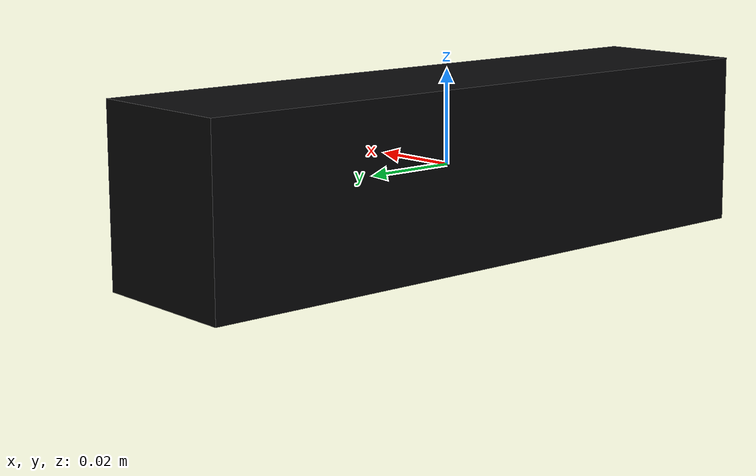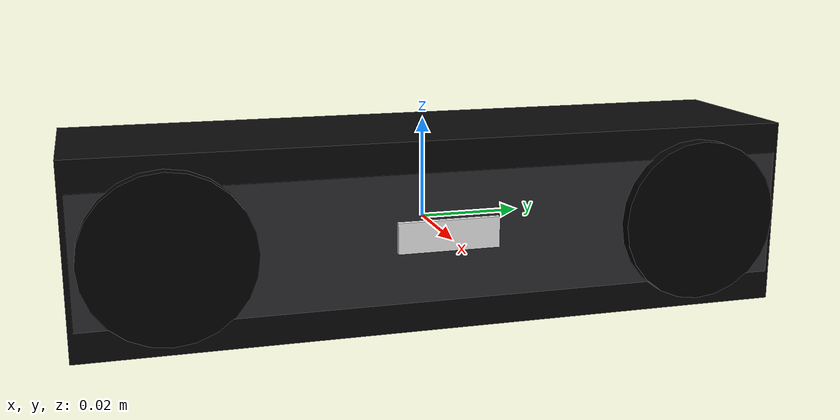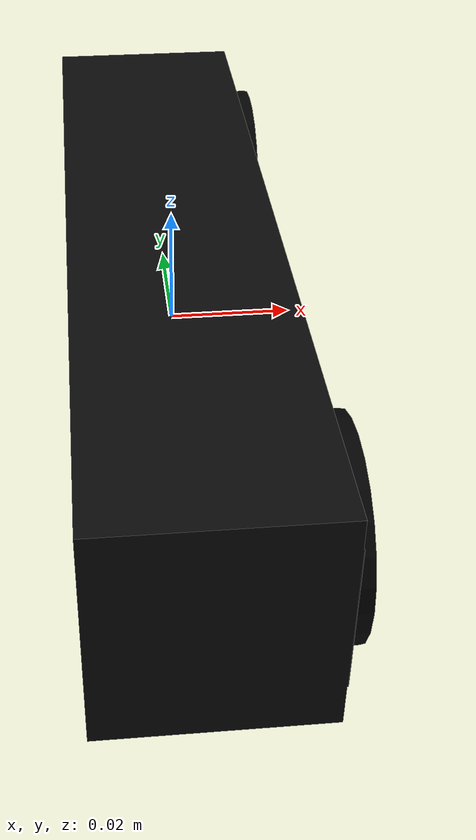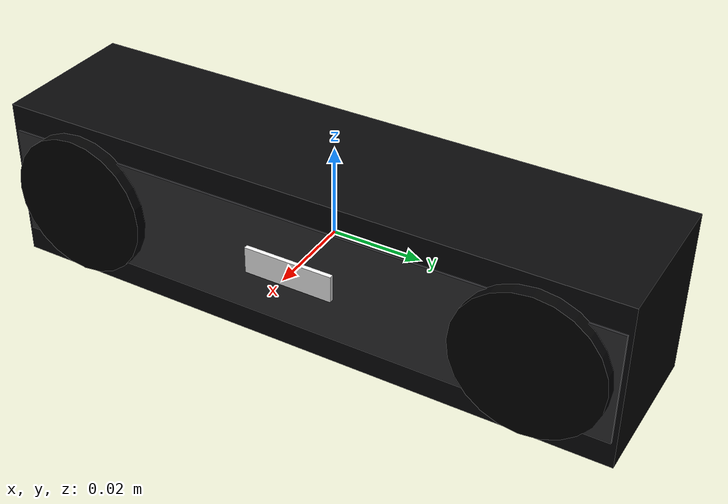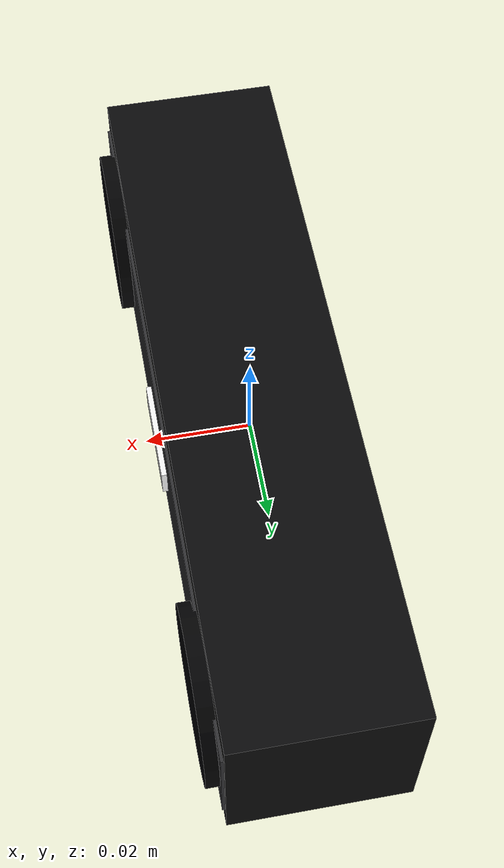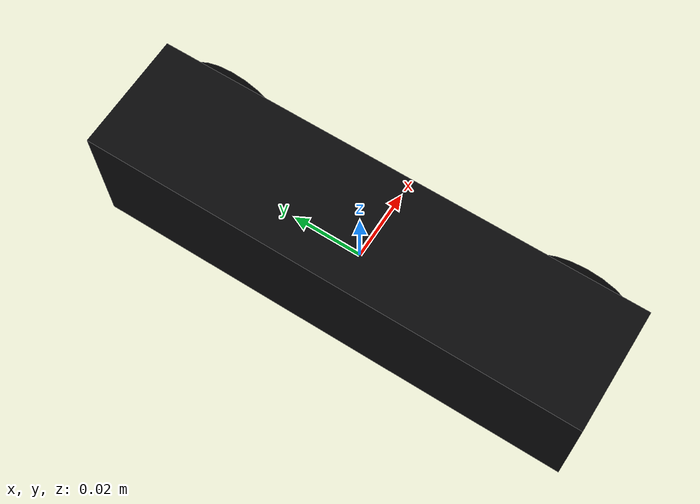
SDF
<?xml version="1.0"?>
<sdf version="1.7">
  <model name="zedx">
    <pose>0 0 0 0 0 0</pose>
    <static>false</static>

    <link name="base_link">
      <inertial>
        <mass>0.240</mass>
        <inertia>
          <ixx>0.000032</ixx>
          <iyy>0.000545</iyy>
          <izz>0.000541</izz>
          <ixy>0</ixy>
          <ixz>0</ixz>
          <iyz>0</iyz>
        </inertia>
      </inertial>

      <collision name="body_collision">
        <geometry>
          <box>
            <size>0.032 0.164 0.037</size>
          </box>
        </geometry>
      </collision>

      <visual name="body_visual">
        <geometry>
          <box>
            <size>0.034 0.140 0.037</size>
          </box>
        </geometry>
        <material>
          <ambient>0.02 0.02 0.025 1</ambient>
          <diffuse>0.035 0.035 0.04 1</diffuse>
          <specular>0.2 0.2 0.2 1</specular>
        </material>
      </visual>

      <visual name="front_face_visual">
        <pose>0.0165 0 0 0 0 0</pose>
        <geometry>
          <box>
            <size>0.002 0.138 0.025</size>
          </box>
        </geometry>
        <material>
          <ambient>0.12 0.12 0.13 1</ambient>
          <diffuse>0.18 0.18 0.19 1</diffuse>
          <specular>0.3 0.3 0.3 1</specular>
        </material>
      </visual>

      <visual name="left_lens_visual">
        <pose>0.017 0.052 0 0 1.570796 0</pose>
        <geometry>
          <cylinder>
            <radius>0.016</radius>
            <length>0.006</length>
          </cylinder>
        </geometry>
        <material>
          <ambient>0.0 0.0 0.0 1</ambient>
          <diffuse>0.005 0.005 0.008 1</diffuse>
          <specular>0.9 0.9 0.95 1</specular>
        </material>
      </visual>
      <visual name="left_lens_inner_visual">
        <pose>0.018 0.052 0 0 1.570796 0</pose>
        <geometry>
          <cylinder>
            <radius>0.008</radius>
            <length>0.003</length>
          </cylinder>
        </geometry>
        <material>
          <ambient>0 0 0 1</ambient>
          <diffuse>0 0 0 1</diffuse>
          <specular>1 1 1 1</specular>
        </material>
      </visual>

      <visual name="right_lens_visual">
        <pose>0.017 -0.052 0 0 1.570796 0</pose>
        <geometry>
          <cylinder>
            <radius>0.016</radius>
            <length>0.006</length>
          </cylinder>
        </geometry>
        <material>
          <ambient>0.0 0.0 0.0 1</ambient>
          <diffuse>0.005 0.005 0.008 1</diffuse>
          <specular>0.9 0.9 0.95 1</specular>
        </material>
      </visual>
      <visual name="right_lens_inner_visual">
        <pose>0.018 -0.052 0 0 1.570796 0</pose>
        <geometry>
          <cylinder>
            <radius>0.008</radius>
            <length>0.003</length>
          </cylinder>
        </geometry>
        <material>
          <ambient>0 0 0 1</ambient>
          <diffuse>0 0 0 1</diffuse>
          <specular>1 1 1 1</specular>
        </material>
      </visual>
      <visual name="zed_logo_visual">
        <pose>0.018 0 0.0005 0 0 0</pose>
        <geometry>
          <box>
            <size>0.001 0.020 0.006</size>
          </box>
        </geometry>
        <material>
          <ambient>0.85 0.85 0.85 1</ambient>
          <diffuse>0.95 0.95 0.95 1</diffuse>
          <emissive>0.35 0.35 0.35 1</emissive>
        </material>
      </visual>

      <sensor name="zedx_rgbd" type="rgbd_camera">
        <pose>0.020 0 0 0 0 0</pose>
        <always_on>1</always_on>
        <update_rate>30</update_rate>
        <visualize>0</visualize>
        <camera name="zedx_rgbd">
          <horizontal_fov>1.919862</horizontal_fov>
          <image>
            <width>960</width>
            <height>600</height>
            <format>R8G8B8</format>
          </image>
          <clip>
            <near>0.03</near>
            <far>40</far>
          </clip>
          <depth_camera>
            <clip>
              <near>0.3</near>
              <far>20.0</far>
            </clip>
          </depth_camera>
          <noise>
            <type>gaussian</type>
            <mean>0</mean>
            <stddev>0.005</stddev>
          </noise>
        </camera>
      </sensor>

      <sensor name="zedx_imu" type="imu">
        <topic>/model/zedx/imu</topic>
        <always_on>1</always_on>
        <update_rate>200</update_rate>
        <imu>
          <enable_orientation>0</enable_orientation>
          <angular_velocity>
            <x>
              <noise type="gaussian">
                <mean>0</mean>
                <stddev>0.009</stddev>
              </noise>
            </x>
            <y>
              <noise type="gaussian">
                <mean>0</mean>
                <stddev>0.009</stddev>
              </noise>
            </y>
            <z>
              <noise type="gaussian">
                <mean>0</mean>
                <stddev>0.009</stddev>
              </noise>
            </z>
          </angular_velocity>
          <linear_acceleration>
            <x>
              <noise type="gaussian">
                <mean>0</mean>
                <stddev>0.021</stddev>
              </noise>
            </x>
            <y>
              <noise type="gaussian">
                <mean>0</mean>
                <stddev>0.021</stddev>
              </noise>
            </y>
            <z>
              <noise type="gaussian">
                <mean>0</mean>
                <stddev>0.021</stddev>
              </noise>
            </z>
          </linear_acceleration>
        </imu>
      </sensor>
    </link>
  </model>
</sdf>
